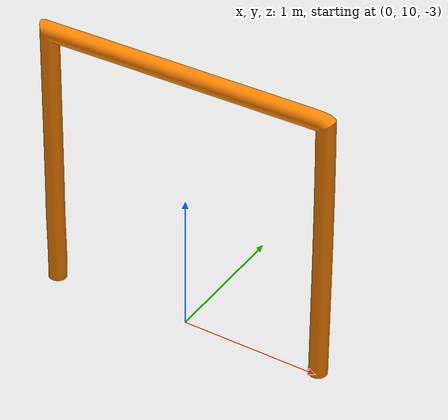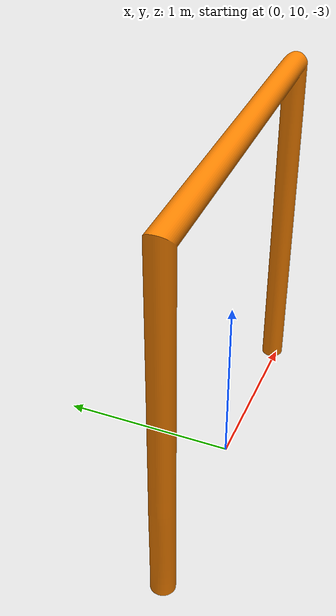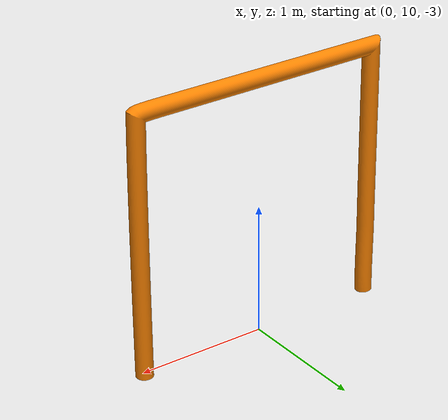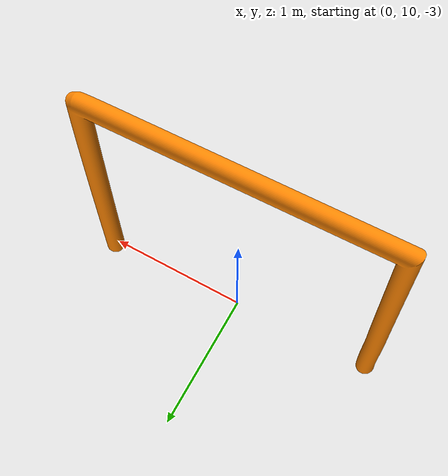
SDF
<?xml version="1.0" ?>
<sdf version="1.4">
  <world name="underwater">
    <include>
      <uri>model://sun</uri>
    </include>
    <include>
      <uri>model://orange_gate</uri>
      <pose>0 10 -3 0 0 1.6</pose>
    </include>
    <gravity>0 0 -9.8</gravity>
    <plugin name="freefloating_gazebo_fluid" filename="libfreefloating_gazebo_fluid.so">
          <descriptionParam>robot_description</descriptionParam> <!-- Where to find the robot's description -->
          <fluidTopic>current</fluidTopic>
          <alwaysOn>true</alwaysOn>
          <surface>0 0 0</surface>                              <!-- Defines 0 depth-->
          <updateRate>.001</updateRate>
    </plugin>
    <physics type="ode">
      <max_step_size>.01</max_step_size>
      <real_time_update_rate>100</real_time_update_rate>
    </physics>
  </world>
</sdf>

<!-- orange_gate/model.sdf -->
<sdf version="1.4">
<model name="orange_gate">
  <pose>0 0 0 0 0 0</pose>
  <static>true</static>
    <link name="gate">
      <collision name="collision">
        <geometry>
          <mesh><uri>model://orange_gate/gate.stl</uri></mesh>
        </geometry>
      </collision>
      <visual name="visual">
        <geometry>
          <mesh><uri>model://orange_gate/gate.stl</uri></mesh>
        </geometry>
	<material>
	  <diffuse>1 0.52 0.0 1.0</diffuse>
	  <specular>1 0.52 0.0 1.0</specular>
	  <ambient>1 0.52 0.0 1.0</ambient>
	</material>
      </visual>
    </link>
  </model>
</sdf>
